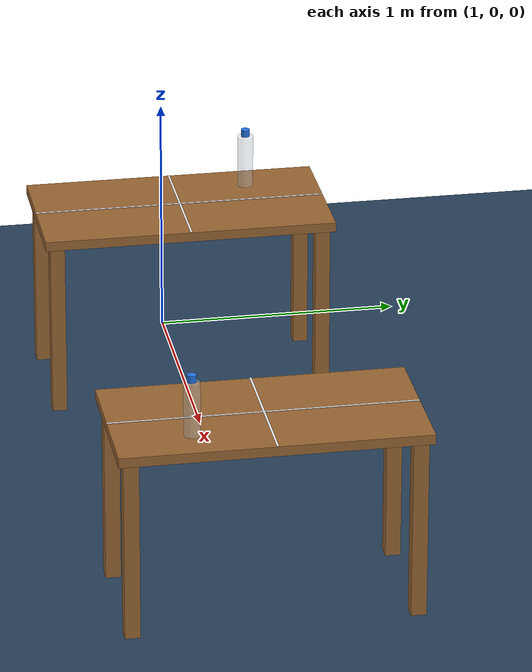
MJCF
<?xml version='1.0' encoding='utf-8'?>
<mujoco model="table_with_water_bottle">
  <asset>
    <texture name="grid" type="2d" builtin="checker" width="512" height="512" rgb1=".1 .2 .3" rgb2=".2 .3 .4" />
    <material name="grid" texture="grid" texrepeat="1 1" texuniform="true" reflectance="0.2" specular="1.0" shininess="0.5" />
    <material name="table_wood" rgba="0.6 0.4 0.2 1" specular="0.3" shininess="0.2" />
    <material name="table_line_white" rgba="0.95 0.95 0.95 1" specular="0.2" shininess="0.1" />
    <material name="bottle_plastic" rgba="0.85 0.9 0.95 0.35" specular="0.85" shininess="0.7" />
    <material name="bottle_cap" rgba="0.15 0.45 0.9 1" specular="0.35" shininess="0.25" />
    <material name="water_liquid" rgba="0.55 0.75 0.95 0.45" specular="0.75" shininess="0.6" />
  </asset>
<worldbody>
    <light pos="0 0 5" directional="true" diffuse=".8 .8 .8" specular=".5 .5 .5" dir="0 0 -1" castshadow="true" />
    <geom name="floor" type="plane" material="grid" size="0 0 0.1" pos="0 0 0" group="2" contype="1" conaffinity="1" friction="0.8 0.02 0.001" />
    <body name="table_1" pos="1.5 0 0" quat="0.70710678 0 0 0.70710678">
      <joint name="table_joint_1" type="free" damping="0.08" />
      <geom name="table_top_1" type="box" size="0.6 0.3 0.02" pos="0 0 0.75" group="2" material="table_wood" mass="15" contype="1" conaffinity="1" friction="0.4 0.005 0.0001" solimp="0.95 0.99 0.001 0.5 2" solref="0.01 1" />
      <geom name="table_line_long_1" type="box" size="0.6 0.004 0.001" pos="0 0 0.771" material="table_line_white" contype="1" conaffinity="1" friction="0.4 0.005 0.0001" />
      <geom name="table_line_short_1" type="box" size="0.004 0.3 0.001" pos="0 0 0.771" material="table_line_white" contype="1" conaffinity="1" friction="0.4 0.005 0.0001" />
      <geom name="table_leg_fl_1" type="box" size="0.03 0.03 0.365" pos="0.55 0.25 0.365" material="table_wood" mass="1" contype="1" conaffinity="1" friction="0.8 0.02 0.001" />
      <geom name="table_leg_fr_1" type="box" size="0.03 0.03 0.365" pos="0.55 -0.25 0.365" material="table_wood" mass="1" contype="1" conaffinity="1" friction="0.8 0.02 0.001" />
      <geom name="table_leg_rl_1" type="box" size="0.03 0.03 0.365" pos="-0.55 0.25 0.365" material="table_wood" mass="1" contype="1" conaffinity="1" friction="0.8 0.02 0.001" />
      <geom name="table_leg_rr_1" type="box" size="0.03 0.03 0.365" pos="-0.55 -0.25 0.365" material="table_wood" mass="1" contype="1" conaffinity="1" friction="0.8 0.02 0.001" />
    </body>
    <body name="water_bottle_1" pos="1.35 0.3 0.881">
      <joint name="water_bottle_joint_1" type="free" damping="0.03" />
      <geom name="bottle_body_1" type="cylinder" size="0.032 0.11" pos="0 0 0" material="bottle_plastic" mass="0.06" contype="1" conaffinity="1" friction="0.3 0.005 0.0001" solimp="0.8 0.95 0.001 0.5 2" solref="0.02 1" />
      <geom name="bottle_water_1" type="cylinder" size="0.026 0.08" pos="0 0 -0.01" material="water_liquid" mass="0.42" contype="0" conaffinity="0" />
      <geom name="bottle_cap_1" type="cylinder" size="0.018 0.015" pos="0 0 0.125" material="bottle_cap" mass="0.02" contype="1" conaffinity="1" friction="0.35 0.005 0.0001" solimp="0.9 0.95 0.001 0.5 2" />
    </body>
    <body name="table_2" pos="3.5 0 0" quat="0.70710678 0 0 0.70710678">
      <joint name="table_joint_2" type="free" damping="0.08" />
      <geom name="table_top_2" type="box" size="0.6 0.3 0.02" pos="0 0 0.75" group="2" material="table_wood" mass="15" contype="1" conaffinity="1" friction="0.4 0.005 0.0001" solimp="0.95 0.99 0.001 0.5 2" solref="0.01 1" />
      <geom name="table_line_long_2" type="box" size="0.6 0.004 0.001" pos="0 0 0.771" material="table_line_white" contype="1" conaffinity="1" friction="0.4 0.005 0.0001" />
      <geom name="table_line_short_2" type="box" size="0.004 0.3 0.001" pos="0 0 0.771" material="table_line_white" contype="1" conaffinity="1" friction="0.4 0.005 0.0001" />
      <geom name="table_leg_fl_2" type="box" size="0.03 0.03 0.365" pos="0.55 0.25 0.365" material="table_wood" mass="1" contype="1" conaffinity="1" friction="0.8 0.02 0.001" />
      <geom name="table_leg_fr_2" type="box" size="0.03 0.03 0.365" pos="0.55 -0.25 0.365" material="table_wood" mass="1" contype="1" conaffinity="1" friction="0.8 0.02 0.001" />
      <geom name="table_leg_rl_2" type="box" size="0.03 0.03 0.365" pos="-0.55 0.25 0.365" material="table_wood" mass="1" contype="1" conaffinity="1" friction="0.8 0.02 0.001" />
      <geom name="table_leg_rr_2" type="box" size="0.03 0.03 0.365" pos="-0.55 -0.25 0.365" material="table_wood" mass="1" contype="1" conaffinity="1" friction="0.8 0.02 0.001" />
    </body>
    <body name="water_bottle_2" pos="3.65 -0.3 0.881">
      <joint name="water_bottle_2_joint" type="free" damping="0.03" />
      <geom name="bottle_body_2" type="cylinder" size="0.032 0.11" pos="0 0 0" material="bottle_plastic" mass="0.06" contype="1" conaffinity="1" friction="0.3 0.005 0.0001" solimp="0.8 0.95 0.001 0.5 2" solref="0.02 1" />
      <geom name="bottle_water_2" type="cylinder" size="0.026 0.08" pos="0 0 -0.01" material="water_liquid" mass="0.42" contype="0" conaffinity="0" />
      <geom name="bottle_cap_2" type="cylinder" size="0.018 0.015" pos="0 0 0.125" material="bottle_cap" mass="0.02" contype="1" conaffinity="1" friction="0.35 0.005 0.0001" solimp="0.9 0.95 0.001 0.5 2" />
    </body>
  </worldbody>
</mujoco>
